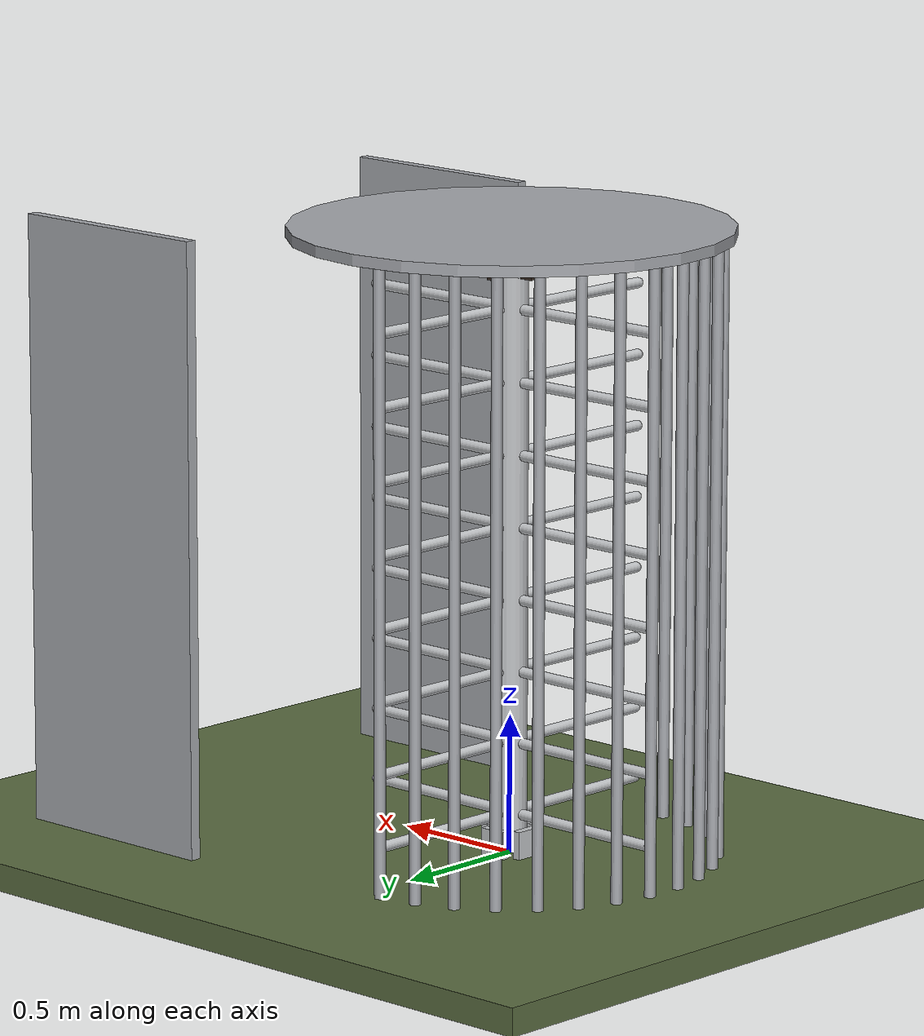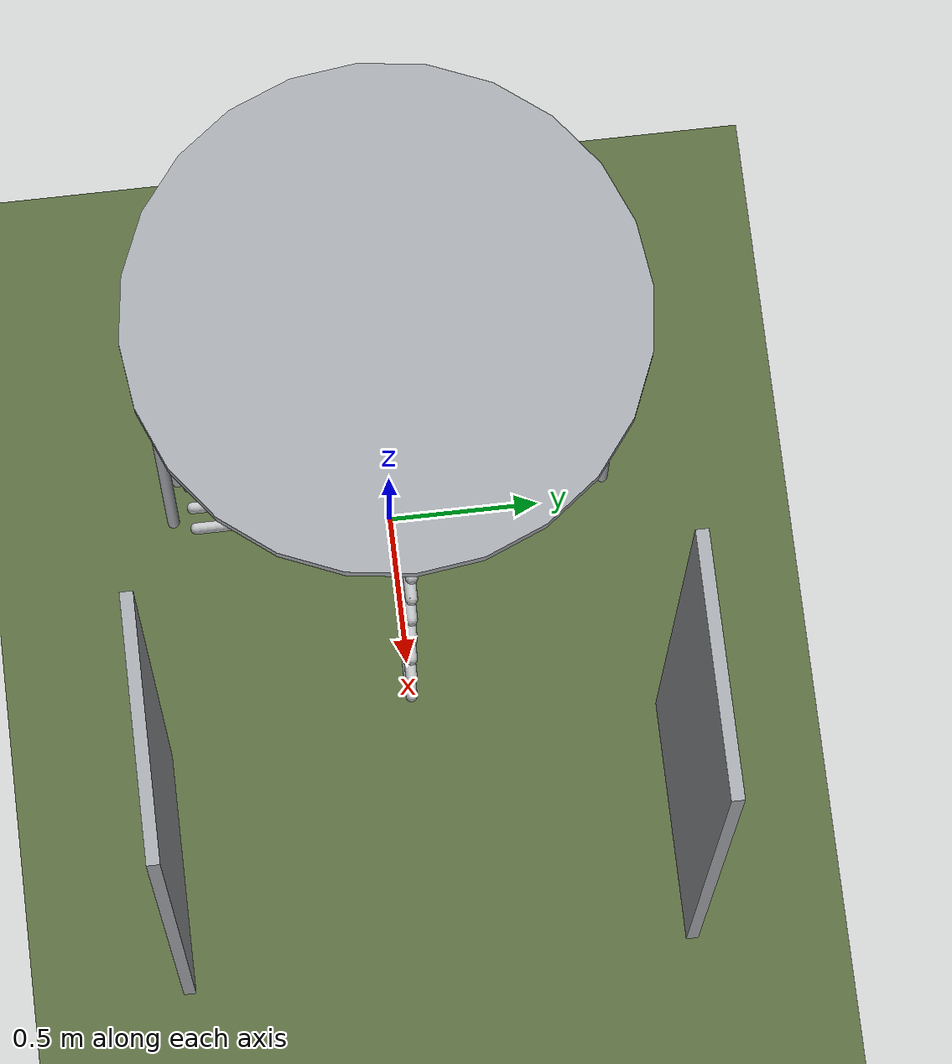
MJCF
<?xml version="1.0" ?>
<mujoco model="db0589_turnstile_fullheight_simple">
  <compiler angle="radian" meshdir="../../hardware" texturedir="../../textures" autolimits="true" inertiafromgeom="false"/>
  <option timestep="0.002" integrator="implicitfast" cone="elliptic" impratio="10" noslip_iterations="3">
    <flag multiccd="enable"/>
  </option>
  <size memory="16M"/>
  <default>
    <geom condim="4" solref="0.005 1" solimp="0.95 0.99 0.001"/>
    <joint solreflimit="0.005 1" solimplimit="0.95 0.99 0.001"/>
    <tendon solreflimit="0.005 1"/>
    <equality solref="0.002 1"/>
  </default>
  <visual>
    <headlight ambient="0.4 0.4 0.4" diffuse="0.7 0.7 0.7" specular="0.2 0.2 0.2"/>
    <quality shadowsize="4096"/>
    <map znear="0.01" zfar="60"/>
  </visual>
  <asset>
    <material name="mat_floor" rgba="0.35 0.42 0.25 1" specular="0.2" shininess="0.15" reflectance="0"/>
    <material name="mat_wall" rgba="0.78 0.76 0.7 1" specular="0.2" shininess="0.1" reflectance="0"/>
    <material name="mat_frame" rgba="0.65 0.66 0.68 1" specular="0.74" shininess="0.5" reflectance="0.36"/>
    <material name="mat_op_stainless" rgba="0.75 0.76 0.77 1" specular="0.8" shininess="0.65" reflectance="0.4"/>
    <material name="mat_rotor_lock" rgba="0.22 0.17 0.13 1" specular="0.8" shininess="0.6" reflectance="0.4"/>
    <texture name="skybox" type="skybox" builtin="gradient" rgb1="0.6 0.7 0.85" rgb2="0.9 0.92 0.95" width="256" height="256"/>
  </asset>
  <worldbody>
    <light name="sun" pos="1.5 -2.5 4" dir="-0.3 0.5 -0.8" directional="true" diffuse="0.8 0.8 0.8" specular="0.3 0.3 0.3" castshadow="true"/>
    <light name="fill" pos="-1.5 2.5 3" dir="0.3 -0.5 -0.7" directional="true" diffuse="0.35 0.35 0.4" castshadow="false"/>
    <camera name="robot_view" pos="0 -2.78125 1.92875" xyaxes="1 0 0 0 0.26963 0.962964" fovy="52"/>
    <camera name="far_view" pos="0 2.78125 1.92875" xyaxes="-1 0 0 0 -0.26963 0.962964" fovy="52"/>
    <camera name="iso" pos="2.11375 -2.33625 2.37375" xyaxes="0.741536 0.670913 0 -0.242917 0.268487 0.932151" fovy="46"/>
    <camera name="detail_handle" pos="0.55 -1.1 1.35" xyaxes="0.975133 0.221621 0 -0.065674 0.288965 0.955084" fovy="38"/>
    <geom name="floor" type="box" size="6 6 0.05" pos="0 0 -0.05" material="mat_floor" group="0" contype="1" conaffinity="1" friction="0.8 0.005 0.0001" density="2400"/>
    <geom name="cage_bar_0" type="cylinder" size="0.02 1.1" pos="-0.071553 0.726485 1.1" material="mat_frame" group="0" contype="1" conaffinity="1" friction="0.6 0.005 0.0001" density="7850"/>
    <geom name="cage_bar_1" type="cylinder" size="0.02 1.1" pos="-0.211908 0.698566 1.1" material="mat_frame" group="0" contype="1" conaffinity="1" friction="0.6 0.005 0.0001" density="7850"/>
    <geom name="cage_bar_2" type="cylinder" size="0.02 1.1" pos="-0.34412 0.643803 1.1" material="mat_frame" group="0" contype="1" conaffinity="1" friction="0.6 0.005 0.0001" density="7850"/>
    <geom name="cage_bar_3" type="cylinder" size="0.02 1.1" pos="-0.463107 0.564298 1.1" material="mat_frame" group="0" contype="1" conaffinity="1" friction="0.6 0.005 0.0001" density="7850"/>
    <geom name="cage_bar_4" type="cylinder" size="0.02 1.1" pos="-0.564298 0.463107 1.1" material="mat_frame" group="0" contype="1" conaffinity="1" friction="0.6 0.005 0.0001" density="7850"/>
    <geom name="cage_bar_5" type="cylinder" size="0.02 1.1" pos="-0.643803 0.34412 1.1" material="mat_frame" group="0" contype="1" conaffinity="1" friction="0.6 0.005 0.0001" density="7850"/>
    <geom name="cage_bar_6" type="cylinder" size="0.02 1.1" pos="-0.698566 0.211908 1.1" material="mat_frame" group="0" contype="1" conaffinity="1" friction="0.6 0.005 0.0001" density="7850"/>
    <geom name="cage_bar_7" type="cylinder" size="0.02 1.1" pos="-0.726485 0.071553 1.1" material="mat_frame" group="0" contype="1" conaffinity="1" friction="0.6 0.005 0.0001" density="7850"/>
    <geom name="cage_bar_8" type="cylinder" size="0.02 1.1" pos="-0.726485 -0.071553 1.1" material="mat_frame" group="0" contype="1" conaffinity="1" friction="0.6 0.005 0.0001" density="7850"/>
    <geom name="cage_bar_9" type="cylinder" size="0.02 1.1" pos="-0.698566 -0.211908 1.1" material="mat_frame" group="0" contype="1" conaffinity="1" friction="0.6 0.005 0.0001" density="7850"/>
    <geom name="cage_bar_10" type="cylinder" size="0.02 1.1" pos="-0.643803 -0.34412 1.1" material="mat_frame" group="0" contype="1" conaffinity="1" friction="0.6 0.005 0.0001" density="7850"/>
    <geom name="cage_bar_11" type="cylinder" size="0.02 1.1" pos="-0.564298 -0.463107 1.1" material="mat_frame" group="0" contype="1" conaffinity="1" friction="0.6 0.005 0.0001" density="7850"/>
    <geom name="cage_bar_12" type="cylinder" size="0.02 1.1" pos="-0.463107 -0.564298 1.1" material="mat_frame" group="0" contype="1" conaffinity="1" friction="0.6 0.005 0.0001" density="7850"/>
    <geom name="cage_bar_13" type="cylinder" size="0.02 1.1" pos="-0.34412 -0.643803 1.1" material="mat_frame" group="0" contype="1" conaffinity="1" friction="0.6 0.005 0.0001" density="7850"/>
    <geom name="cage_bar_14" type="cylinder" size="0.02 1.1" pos="-0.211908 -0.698566 1.1" material="mat_frame" group="0" contype="1" conaffinity="1" friction="0.6 0.005 0.0001" density="7850"/>
    <geom name="cage_bar_15" type="cylinder" size="0.02 1.1" pos="-0.071553 -0.726485 1.1" material="mat_frame" group="0" contype="1" conaffinity="1" friction="0.6 0.005 0.0001" density="7850"/>
    <geom name="cage_roof" type="cylinder" size="0.78 0.02" pos="0 0 2.22" material="mat_frame" group="0" contype="1" conaffinity="1" friction="0.6 0.005 0.0001" density="7850"/>
    <geom name="barrier_n" type="box" size="0.4 0.02 1.1" pos="1.13 -0.83 1.1" material="mat_frame" group="0" contype="1" conaffinity="1" friction="0.6 0.005 0.0001" density="7850"/>
    <geom name="barrier_p" type="box" size="0.4 0.02 1.1" pos="1.13 0.83 1.1" material="mat_frame" group="0" contype="1" conaffinity="1" friction="0.6 0.005 0.0001" density="7850"/>
    <geom name="rotor_bearing_jaw_0" type="box" size="0.015 0.05 0.05" pos="0.077 0 0.05" material="mat_op_stainless" group="0" contype="1" conaffinity="1" friction="0.6 0.005 0.0001" density="7900"/>
    <geom name="rotor_bearing_jaw_1" type="box" size="0.015 0.05 0.05" pos="-0.077 0 0.05" material="mat_op_stainless" group="0" contype="1" conaffinity="1" friction="0.6 0.005 0.0001" density="7900"/>
    <geom name="rotor_bearing_jaw_2" type="box" size="0.05 0.015 0.05" pos="0 0.077 0.05" material="mat_op_stainless" group="0" contype="1" conaffinity="1" friction="0.6 0.005 0.0001" density="7900"/>
    <geom name="rotor_bearing_jaw_3" type="box" size="0.05 0.015 0.05" pos="0 -0.077 0.05" material="mat_op_stainless" group="0" contype="1" conaffinity="1" friction="0.6 0.005 0.0001" density="7900"/>
    <geom name="rotor_solenoid_housing" type="cylinder" size="0.022 0.042" pos="0.057983 0.057983 2.16" material="mat_rotor_lock" group="1" contype="0" conaffinity="0" density="7850"/>
    <site name="approach_point" pos="1.13 -1.5 0" quat="1 0 0 0" size="0.05" rgba="0.2 0.9 0.2 0.5" group="4"/>
    <site name="goal_point" pos="1.13 1.5 0" quat="1 0 0 0" size="0.05" rgba="0.2 0.9 0.2 0.5" group="4"/>
    <site name="door_plane_center" pos="0.365 0 1" quat="1 0 0 0" size="0.02" rgba="0.2 0.9 0.2 0.5" group="4"/>
    <body name="rotor" pos="0 0 0">
      <inertial pos="0 0 1.102356" mass="49.771633" quat="0.5 -0.5 -0.5 -0.5" diaginertia="0.997421949 20.00988677 20.00988677"/>
      <joint name="rotor_hinge" type="hinge" axis="0 0 1" limited="false" damping="6" frictionloss="4.509573" armature="0.3"/>
      <geom name="rotor_column" type="cylinder" size="0.06 1.085" pos="0 0 1.1" material="mat_op_stainless" group="0" contype="1" conaffinity="1" friction="0.6 0.005 0.0001" density="7900"/>
      <geom name="wing_0_arm_0" type="capsule" size="0.019 0.325" pos="0.325 0 0.15" quat="0.707107 0 0.707107 0" material="mat_op_stainless" group="0" contype="1" conaffinity="1" friction="0.6 0.005 0.0001" density="7900"/>
      <geom name="wing_0_arm_1" type="capsule" size="0.019 0.325" pos="0.325 0 0.407143" quat="0.707107 0 0.707107 0" material="mat_op_stainless" group="0" contype="1" conaffinity="1" friction="0.6 0.005 0.0001" density="7900"/>
      <geom name="wing_0_arm_2" type="capsule" size="0.019 0.325" pos="0.325 0 0.664286" quat="0.707107 0 0.707107 0" material="mat_op_stainless" group="0" contype="1" conaffinity="1" friction="0.6 0.005 0.0001" density="7900"/>
      <geom name="wing_0_arm_3" type="capsule" size="0.019 0.325" pos="0.325 0 0.921429" quat="0.707107 0 0.707107 0" material="mat_op_stainless" group="0" contype="1" conaffinity="1" friction="0.6 0.005 0.0001" density="7900"/>
      <geom name="wing_0_arm_4" type="capsule" size="0.019 0.325" pos="0.325 0 1.178571" quat="0.707107 0 0.707107 0" material="mat_op_stainless" group="0" contype="1" conaffinity="1" friction="0.6 0.005 0.0001" density="7900"/>
      <geom name="wing_0_arm_5" type="capsule" size="0.019 0.325" pos="0.325 0 1.435714" quat="0.707107 0 0.707107 0" material="mat_op_stainless" group="0" contype="1" conaffinity="1" friction="0.6 0.005 0.0001" density="7900"/>
      <geom name="wing_0_arm_6" type="capsule" size="0.019 0.325" pos="0.325 0 1.692857" quat="0.707107 0 0.707107 0" material="mat_op_stainless" group="0" contype="1" conaffinity="1" friction="0.6 0.005 0.0001" density="7900"/>
      <geom name="wing_0_arm_7" type="capsule" size="0.019 0.325" pos="0.325 0 1.95" quat="0.707107 0 0.707107 0" material="mat_op_stainless" group="0" contype="1" conaffinity="1" friction="0.6 0.005 0.0001" density="7900"/>
      <geom name="wing_1_arm_0" type="capsule" size="0.019 0.325" pos="0 0.325 0.15" quat="0.707107 -0.707107 0 0" material="mat_op_stainless" group="0" contype="1" conaffinity="1" friction="0.6 0.005 0.0001" density="7900"/>
      <geom name="wing_1_arm_1" type="capsule" size="0.019 0.325" pos="0 0.325 0.407143" quat="0.707107 -0.707107 0 0" material="mat_op_stainless" group="0" contype="1" conaffinity="1" friction="0.6 0.005 0.0001" density="7900"/>
      <geom name="wing_1_arm_2" type="capsule" size="0.019 0.325" pos="0 0.325 0.664286" quat="0.707107 -0.707107 0 0" material="mat_op_stainless" group="0" contype="1" conaffinity="1" friction="0.6 0.005 0.0001" density="7900"/>
      <geom name="wing_1_arm_3" type="capsule" size="0.019 0.325" pos="0 0.325 0.921429" quat="0.707107 -0.707107 0 0" material="mat_op_stainless" group="0" contype="1" conaffinity="1" friction="0.6 0.005 0.0001" density="7900"/>
      <geom name="wing_1_arm_4" type="capsule" size="0.019 0.325" pos="0 0.325 1.178571" quat="0.707107 -0.707107 0 0" material="mat_op_stainless" group="0" contype="1" conaffinity="1" friction="0.6 0.005 0.0001" density="7900"/>
      <geom name="wing_1_arm_5" type="capsule" size="0.019 0.325" pos="0 0.325 1.435714" quat="0.707107 -0.707107 0 0" material="mat_op_stainless" group="0" contype="1" conaffinity="1" friction="0.6 0.005 0.0001" density="7900"/>
      <geom name="wing_1_arm_6" type="capsule" size="0.019 0.325" pos="0 0.325 1.692857" quat="0.707107 -0.707107 0 0" material="mat_op_stainless" group="0" contype="1" conaffinity="1" friction="0.6 0.005 0.0001" density="7900"/>
      <geom name="wing_1_arm_7" type="capsule" size="0.019 0.325" pos="0 0.325 1.95" quat="0.707107 -0.707107 0 0" material="mat_op_stainless" group="0" contype="1" conaffinity="1" friction="0.6 0.005 0.0001" density="7900"/>
      <geom name="wing_2_arm_0" type="capsule" size="0.019 0.325" pos="-0.325 0 0.15" quat="0.707107 0 -0.707107 0" material="mat_op_stainless" group="0" contype="1" conaffinity="1" friction="0.6 0.005 0.0001" density="7900"/>
      <geom name="wing_2_arm_1" type="capsule" size="0.019 0.325" pos="-0.325 0 0.407143" quat="0.707107 0 -0.707107 0" material="mat_op_stainless" group="0" contype="1" conaffinity="1" friction="0.6 0.005 0.0001" density="7900"/>
      <geom name="wing_2_arm_2" type="capsule" size="0.019 0.325" pos="-0.325 0 0.664286" quat="0.707107 0 -0.707107 0" material="mat_op_stainless" group="0" contype="1" conaffinity="1" friction="0.6 0.005 0.0001" density="7900"/>
      <geom name="wing_2_arm_3" type="capsule" size="0.019 0.325" pos="-0.325 0 0.921429" quat="0.707107 0 -0.707107 0" material="mat_op_stainless" group="0" contype="1" conaffinity="1" friction="0.6 0.005 0.0001" density="7900"/>
      <geom name="wing_2_arm_4" type="capsule" size="0.019 0.325" pos="-0.325 0 1.178571" quat="0.707107 0 -0.707107 0" material="mat_op_stainless" group="0" contype="1" conaffinity="1" friction="0.6 0.005 0.0001" density="7900"/>
      <geom name="wing_2_arm_5" type="capsule" size="0.019 0.325" pos="-0.325 0 1.435714" quat="0.707107 0 -0.707107 0" material="mat_op_stainless" group="0" contype="1" conaffinity="1" friction="0.6 0.005 0.0001" density="7900"/>
      <geom name="wing_2_arm_6" type="capsule" size="0.019 0.325" pos="-0.325 0 1.692857" quat="0.707107 0 -0.707107 0" material="mat_op_stainless" group="0" contype="1" conaffinity="1" friction="0.6 0.005 0.0001" density="7900"/>
      <geom name="wing_2_arm_7" type="capsule" size="0.019 0.325" pos="-0.325 0 1.95" quat="0.707107 0 -0.707107 0" material="mat_op_stainless" group="0" contype="1" conaffinity="1" friction="0.6 0.005 0.0001" density="7900"/>
      <geom name="wing_3_arm_0" type="capsule" size="0.019 0.325" pos="0 -0.325 0.15" quat="0.707107 0.707107 0 0" material="mat_op_stainless" group="0" contype="1" conaffinity="1" friction="0.6 0.005 0.0001" density="7900"/>
      <geom name="wing_3_arm_1" type="capsule" size="0.019 0.325" pos="0 -0.325 0.407143" quat="0.707107 0.707107 0 0" material="mat_op_stainless" group="0" contype="1" conaffinity="1" friction="0.6 0.005 0.0001" density="7900"/>
      <geom name="wing_3_arm_2" type="capsule" size="0.019 0.325" pos="0 -0.325 0.664286" quat="0.707107 0.707107 0 0" material="mat_op_stainless" group="0" contype="1" conaffinity="1" friction="0.6 0.005 0.0001" density="7900"/>
      <geom name="wing_3_arm_3" type="capsule" size="0.019 0.325" pos="0 -0.325 0.921429" quat="0.707107 0.707107 0 0" material="mat_op_stainless" group="0" contype="1" conaffinity="1" friction="0.6 0.005 0.0001" density="7900"/>
      <geom name="wing_3_arm_4" type="capsule" size="0.019 0.325" pos="0 -0.325 1.178571" quat="0.707107 0.707107 0 0" material="mat_op_stainless" group="0" contype="1" conaffinity="1" friction="0.6 0.005 0.0001" density="7900"/>
      <geom name="wing_3_arm_5" type="capsule" size="0.019 0.325" pos="0 -0.325 1.435714" quat="0.707107 0.707107 0 0" material="mat_op_stainless" group="0" contype="1" conaffinity="1" friction="0.6 0.005 0.0001" density="7900"/>
      <geom name="wing_3_arm_6" type="capsule" size="0.019 0.325" pos="0 -0.325 1.692857" quat="0.707107 0.707107 0 0" material="mat_op_stainless" group="0" contype="1" conaffinity="1" friction="0.6 0.005 0.0001" density="7900"/>
      <geom name="wing_3_arm_7" type="capsule" size="0.019 0.325" pos="0 -0.325 1.95" quat="0.707107 0.707107 0 0" material="mat_op_stainless" group="0" contype="1" conaffinity="1" friction="0.6 0.005 0.0001" density="7900"/>
      <geom name="rotor_lock_dog_0" type="box" size="0.025 0.016 0.02" pos="0.082 0 2.08" material="mat_rotor_lock" group="0" contype="1" conaffinity="1" friction="0.6 0.005 0.0001" density="7850"/>
      <geom name="rotor_lock_dog_1" type="box" size="0.025 0.016 0.02" pos="0 0.082 2.08" quat="0.707107 0 0 0.707107" material="mat_rotor_lock" group="0" contype="1" conaffinity="1" friction="0.6 0.005 0.0001" density="7850"/>
      <geom name="rotor_lock_dog_2" type="box" size="0.025 0.016 0.02" pos="-0.082 0 2.08" quat="0 0 0 1" material="mat_rotor_lock" group="0" contype="1" conaffinity="1" friction="0.6 0.005 0.0001" density="7850"/>
      <geom name="rotor_lock_dog_3" type="box" size="0.025 0.016 0.02" pos="0 -0.082 2.08" quat="0.707107 0 0 -0.707107" material="mat_rotor_lock" group="0" contype="1" conaffinity="1" friction="0.6 0.005 0.0001" density="7850"/>
      <site name="wing_0_push" pos="0.52 0 1" quat="1 0 0 0" size="0.015" rgba="0.2 0.9 0.2 0.5" group="4"/>
      <site name="wing_1_push" pos="0 0.52 1" quat="1 0 0 0" size="0.015" rgba="0.2 0.9 0.2 0.5" group="4"/>
      <site name="wing_2_push" pos="-0.52 0 1" quat="1 0 0 0" size="0.015" rgba="0.2 0.9 0.2 0.5" group="4"/>
      <site name="wing_3_push" pos="0 -0.52 1" quat="1 0 0 0" size="0.015" rgba="0.2 0.9 0.2 0.5" group="4"/>
    </body>
    <body name="rotor_solenoid_plunger" pos="0.057983 0.057983 0">
      <inertial pos="0 0 2.11" mass="0.191768" quat="0.707107 0 0.707107 0" diaginertia="0.000007767 0.000151161 0.000151161"/>
      <joint name="rotor_solenoid_plunger_slide" type="slide" axis="0 0 1" limited="true" range="0 0.04" damping="2" frictionloss="1" armature="0.1"/>
      <geom name="rotor_solenoid_plunger_geom" type="cylinder" size="0.009 0.048" pos="0 0 2.11" material="mat_rotor_lock" group="0" contype="1" conaffinity="1" friction="0.6 0.005 0.0001" density="7850"/>
    </body>
  </worldbody>
  <equality>
    <weld name="rotor_solenoid_hold" body1="rotor" body2="world" active="true"/>
  </equality>
  <sensor>
    <jointpos name="rotor_hinge_pos" joint="rotor_hinge"/>
    <jointvel name="rotor_hinge_vel" joint="rotor_hinge"/>
    <jointpos name="rotor_solenoid_plunger_slide_pos" joint="rotor_solenoid_plunger_slide"/>
    <jointvel name="rotor_solenoid_plunger_slide_vel" joint="rotor_solenoid_plunger_slide"/>
  </sensor>
</mujoco>
